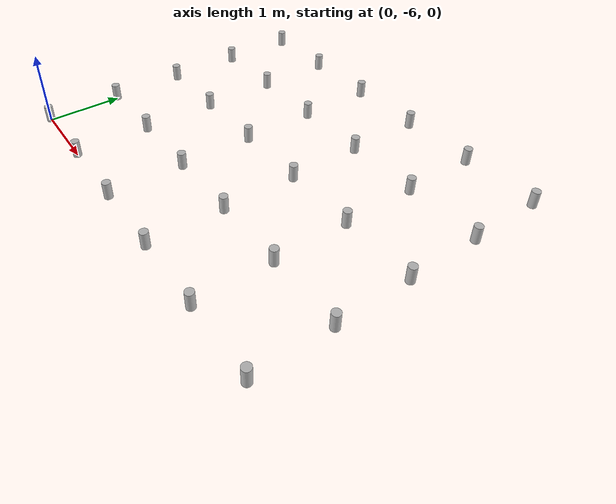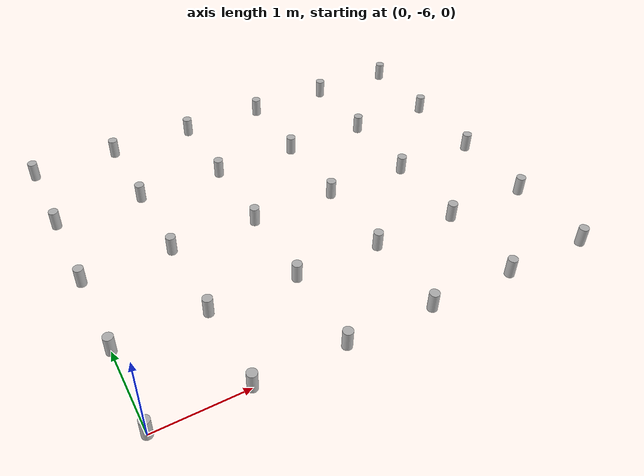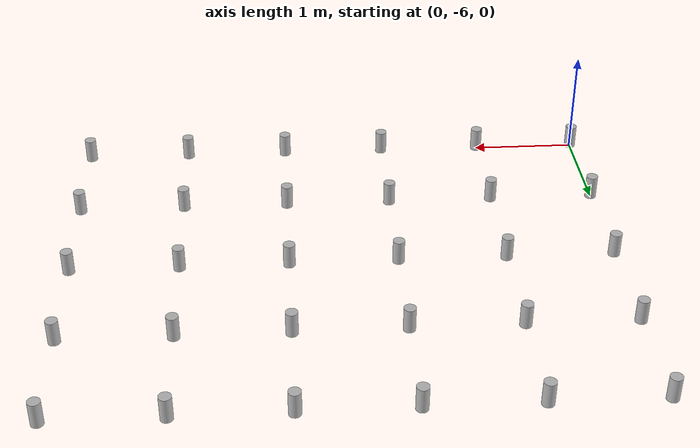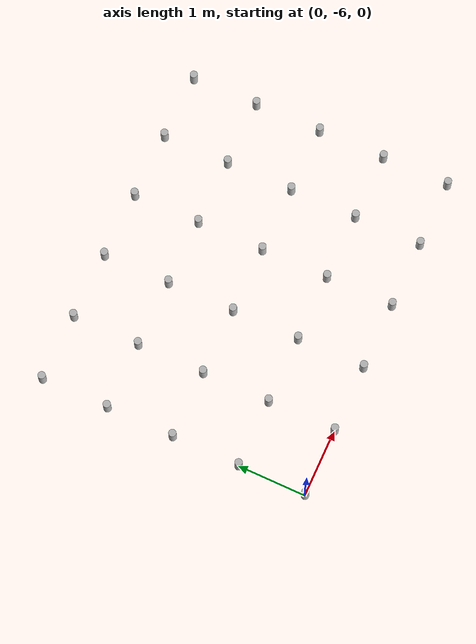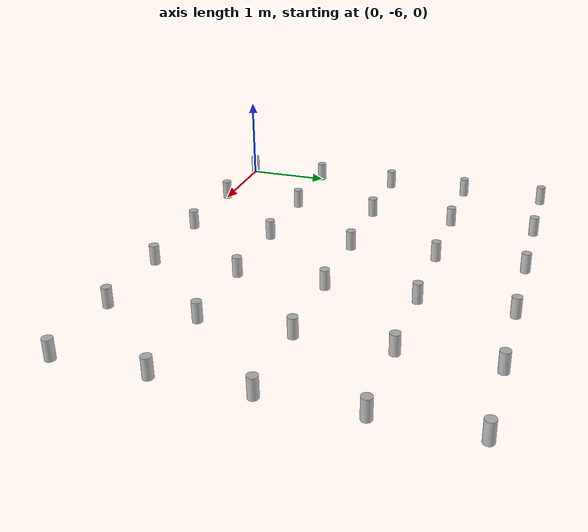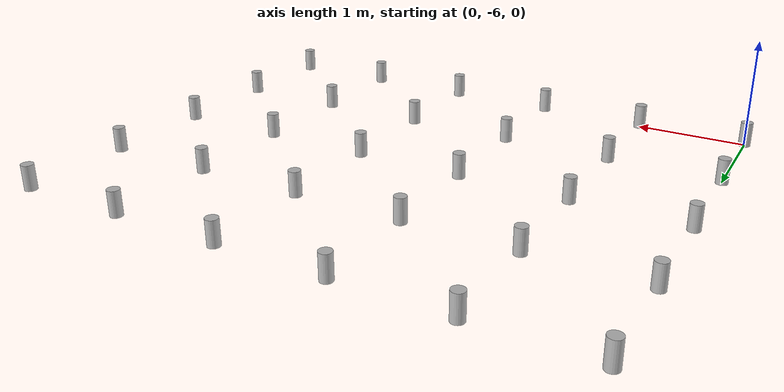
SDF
<sdf version="1.4">
 <world name="myworld">
  <include><uri>model://sun</uri></include>
  <include><uri>model://CropWithWeed</uri><name>Crop_with_weed</name><pose>0 -2 0   0 0 0</pose></include>
  <include><uri>model://CropWithWeed</uri><name>Crop_with_weed</name><pose>1 -2 0   0 0 0</pose></include>
  <include><uri>model://CropWithWeed</uri><name>Crop_with_weed</name><pose>2 -2 0   0 0 0</pose></include>
  <include><uri>model://CropWithWeed</uri><name>Crop_with_weed</name><pose>3 -2 0   0 0 0</pose></include>
  <include><uri>model://CropWithWeed</uri><name>Crop_with_weed</name><pose>4 -2 0   0 0 0</pose></include>
  <include><uri>model://CropWithWeed</uri><name>Crop_with_weed</name><pose>5 -2 0   0 0 0</pose></include>
  <include><uri>model://CropWithWeed</uri><name>Crop_with_weed</name><pose>0 -3 0   0 0 0</pose></include>
  <include><uri>model://CropWithWeed</uri><name>Crop_with_weed</name><pose>1 -3 0   0 0 0</pose></include>
  <include><uri>model://CropWithWeed</uri><name>Crop_with_weed</name><pose>2 -3 0   0 0 0</pose></include>
  <include><uri>model://CropWithWeed</uri><name>Crop_with_weed</name><pose>3 -3 0   0 0 0</pose></include>
  <include><uri>model://CropWithWeed</uri><name>Crop_with_weed</name><pose>4 -3 0   0 0 0</pose></include>
  <include><uri>model://CropWithWeed</uri><name>Crop_with_weed</name><pose>5 -3 0   0 0 0</pose></include>
  <include><uri>model://CropWithWeed</uri><name>Crop_with_weed</name><pose>0 -4 0   0 0 0</pose></include>
  <include><uri>model://CropWithWeed</uri><name>Crop_with_weed</name><pose>1 -4 0   0 0 0</pose></include>
  <include><uri>model://CropWithWeed</uri><name>Crop_with_weed</name><pose>2 -4 0   0 0 0</pose></include>
  <include><uri>model://CropWithWeed</uri><name>Crop_with_weed</name><pose>3 -4 0   0 0 0</pose></include>
  <include><uri>model://CropWithWeed</uri><name>Crop_with_weed</name><pose>4 -4 0   0 0 0</pose></include>
  <include><uri>model://CropWithWeed</uri><name>Crop_with_weed</name><pose>5 -4 0   0 0 0</pose></include>
  <include><uri>model://CropWithWeed</uri><name>Crop_with_weed</name><pose>0 -5 0   0 0 0</pose></include>
  <include><uri>model://CropWithWeed</uri><name>Crop_with_weed</name><pose>1 -5 0   0 0 0</pose></include>
  <include><uri>model://CropWithWeed</uri><name>Crop_with_weed</name><pose>2 -5 0   0 0 0</pose></include>
  <include><uri>model://CropWithWeed</uri><name>Crop_with_weed</name><pose>3 -5 0   0 0 0</pose></include>
  <include><uri>model://CropWithWeed</uri><name>Crop_with_weed</name><pose>4 -5 0   0 0 0</pose></include>
  <include><uri>model://CropWithWeed</uri><name>Crop_with_weed</name><pose>5 -5 0   0 0 0</pose></include>
  <include><uri>model://CropWithWeed</uri><name>Crop_with_weed</name><pose>0 -6 0   0 0 0</pose></include>
  <include><uri>model://CropWithWeed</uri><name>Crop_with_weed</name><pose>1 -6 0   0 0 0</pose></include>
  <include><uri>model://CropWithWeed</uri><name>Crop_with_weed</name><pose>2 -6 0   0 0 0</pose></include>
  <include><uri>model://CropWithWeed</uri><name>Crop_with_weed</name><pose>3 -6 0   0 0 0</pose></include>
  <include><uri>model://CropWithWeed</uri><name>Crop_with_weed</name><pose>4 -6 0   0 0 0</pose></include>
  <include><uri>model://CropWithWeed</uri><name>Crop_with_weed</name><pose>5 -6 0   0 0 0</pose></include>
 </world>
</sdf>

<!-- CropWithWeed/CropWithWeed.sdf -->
<sdf version="1.5">
  <model name="CropWithWeed">
    <link name="link">
      <pose>0 0 0.115 0 0 0</pose>
      <inertial>
        <mass>0.390</mass>
        <inertia>
          <ixx>0.00058</ixx>
          <ixy>0</ixy>
          <ixz>0</ixz>
          <iyy>0.00058</iyy>
          <iyz>0</iyz>
          <izz>0.00019</izz>
        </inertia>
      </inertial>
      <collision name="collision">
        <geometry>
          <cylinder>
            <radius>0.055000</radius>
            <length>0.230000</length>
          </cylinder>
        </geometry>
      </collision>
      <visual name="visual">
        <geometry>
          <cylinder>
            <radius>0.055000</radius>
            <length>0.230000</length>
          </cylinder>
        </geometry>
        <material>
          <script>
            <uri>model://CropWithWeed/materials/scripts</uri>
            <uri>model://CropWithWeed/materials/textures</uri>
            <name>CropWithWeed/Diffuse</name>
          </script>
        </material>
      </visual>
    </link>
  </model>
</sdf>
